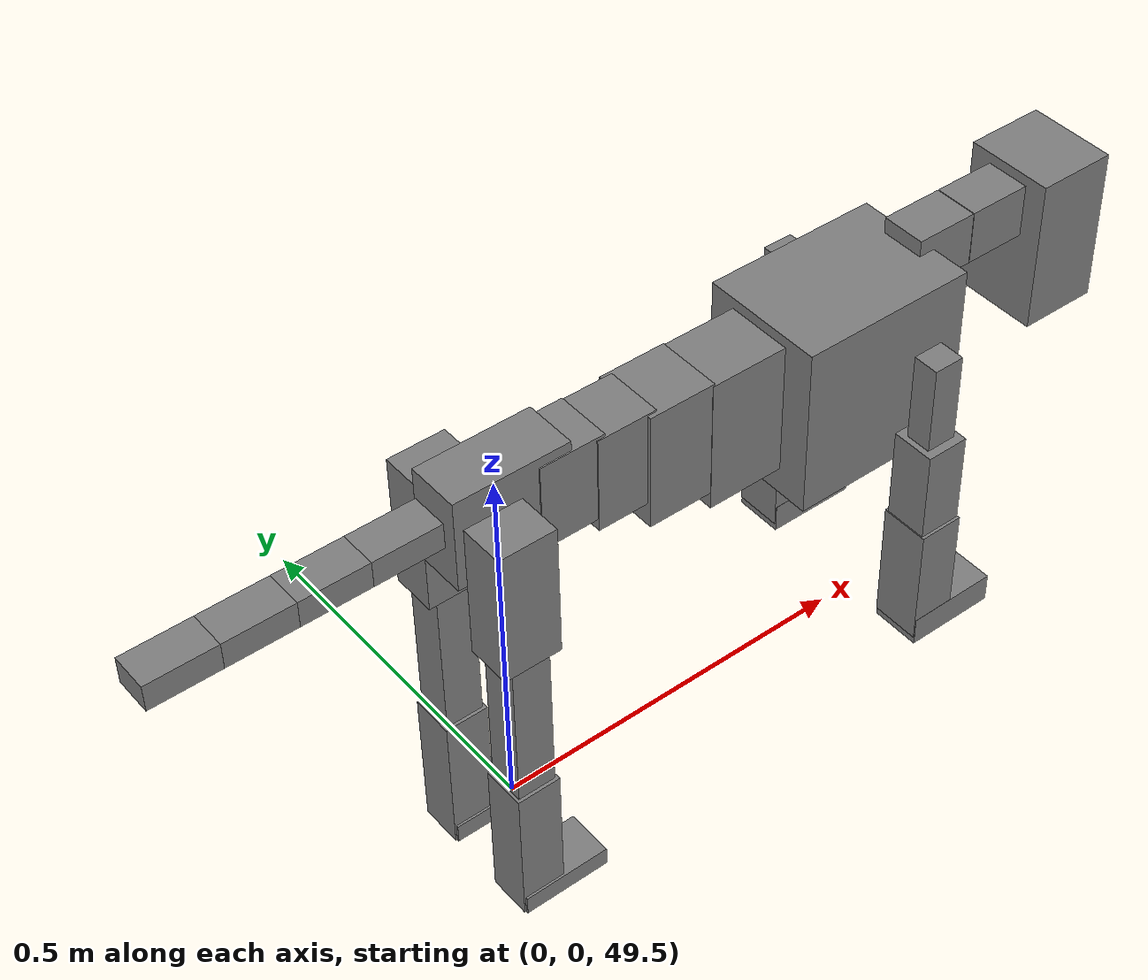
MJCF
<mujoco model="dog">

    <default>
        <joint armature="0.02" stiffness="1" damping="0.2" limited="true"/>
        <geom condim="3" friction="1 0.05 0.05" margin="0.01"/>
        <motor ctrllimited="true" ctrlrange="-1.0 1.0" forcelimited="true" gear="50"/>
    </default>

    <compiler inertiafromgeom="true" angle="radian"/>

    <option timestep="0.016" iterations="50" tolerance="1e-10" solver="Newton" jacobian="dense" cone="pyramidal"/>

    <size nconmax="20000" njmax="60000" nstack="5000000"/>
    <visual>
        <map force="0.1" zfar="30"/>
        <rgba haze="0.15 0.25 0.35 1"/>
        <quality shadowsize="2048"/>
        <global offwidth="800" offheight="800"/>
    </visual>

    <asset>
        <texture type="skybox" builtin="gradient" rgb1="0.3 0.5 0.7" rgb2="0 0 0" width="512" height="512"/>
        <texture name="texplane" type="2d" builtin="checker" rgb1=".2 .3 .4" rgb2=".1 0.15 0.2" width="512" height="512"
                 mark="cross" markrgb=".8 .8 .8"/>
        <texture name="texgeom" type="cube" builtin="flat" mark="cross" width="127" height="1278" rgb1="0.8 0.6 0.4"
                 rgb2="0.8 0.6 0.4" markrgb="1 1 1" random="0.01"/>

        <material name="matplane" reflectance="0.3" texture="texplane" texrepeat="1 1" texuniform="true"/>
        <material name="matgeom" texture="texgeom" texuniform="true" rgba="0.8 0.6 .4 1"/>
    </asset>

    <worldbody>
        <geom name="floor" pos="0 0 0" size="0 0 .25" type="plane" material="matplane" condim="3"/>

        <light directional="false" diffuse=".2 .2 .2" specular="0 0 0" pos="0 0 5" dir="0 0 -1" castshadow="false"/>
        <light mode="targetbodycom" target="torso" directional="false" diffuse=".8 .8 .8" specular="0.3 0.3 0.3"
               pos="0 0 4.0" dir="0 0 -1"/>

        <body name="root" pos="0 0 50">
            <freejoint name="root_1"/>
            <geom type="box" pos="0 0 -0.02" size="0.0774  0.0358  0.063" density="2030"/>

            <body name="spine1" pos="0.054 0 0">
                <joint name="spine1_y" axis="0 1 0" range="0 0.7" limited="true"/>
                <geom type="box" pos="0.02375 0 -0.03" size="0.04375  0.0375  0.05985" density="2030"/>

                <body name="spine2" pos="0.0612 0 0">
                    <joint name="spine2_y" axis="0 1 0" range="-0.15 0.15" limited="true"/>
                    <geom type="box" pos="0.03555  0  -0.04" size="0.04055  0.039  0.06615" density="2030"/>

                    <body name="spine3" pos="0.0730 0 0">
                        <joint name="spine3_y" axis="0 1 0" range="-0.15 0.15" limited="true"/>
                        <geom type="box" pos="0.03555  0  -0.057" size="0.04555  0.0445  0.081" density="2030"/>

                        <body name="spine4" pos="0.0780 0 0">
                            <joint name="spine4_y" axis="0 1 0" range="-0.15 0.15" limited="true"/>
                            <geom type="box" pos="0.05265  0  -0.07" size="0.05265  0.045  0.09135" density="2030"/>

                            <body name="torso" pos="0.1082 0 0">
                                <joint name="torso_y" axis="0 1 0" range="-0.15 0.15" limited="true"/>
                                <geom type="box" pos="0.11925  0  -0.085" size="0.11925  0.085  0.11745"
                                      density="2030"/>

                                <body name="neck1" pos="0.2160  0   0.0180">
                                    <joint name="neck1_y" axis="0 1 0" range="-1.2  -1" limited="true"/>
                                    <geom type="box" pos="0.0423  0  0" size="0.0423  0.03  0.036" density="2325"/>

                                    <body name="neck2" pos="0.0853  0  0">
                                        <joint name="neck2_y" axis="0 1 0" range="0.1  0" limited="true"/>
                                        <geom type="box" pos="0.0423  0  0" size="0.0423  0.03  0.036" density="2325"/>

                                        <body name="head" pos="0.0853  0  0">
                                            <joint name="head_y" axis="0 1 0" range="-0.3  -0.2" limited="true"/>
                                            <geom type="box" pos="0.0531  0  -0.055" size="0.0531  0.06  0.1044"
                                                  density="4030"/>

                                        </body>
                                    </body>
                                </body>

                                <body name="front_shoulder" pos="0.156  0   -0.0480">
                                    <joint name="front_shoulder_y" axis="0 1 0" range="-1 1.5" limited="true"/>
                                    <geom type="box" pos="0 0.13 -0.0467" size="0.0206  0.0176  0.0734" density="1158"/>
                                    <geom type="box" pos="0 -0.13 -0.0467" size="0.0206  0.0176  0.0734"
                                          density="1158"/>

                                    <body name="front_elbow" pos="0  0  -0.0935">
                                        <joint name="front_elbow_y" axis="0 1 0" range="-2 0" limited="true"/>
                                        <geom type="box" pos="0 0.13 -0.0693" size="0.0287  0.0293  0.0693"
                                              density="1081"/>
                                        <geom type="box" pos="0 -0.13 -0.0693" size="0.0287  0.0293  0.0693"
                                              density="1081"/>

                                        <body name="front_wrist" pos="0  0  -0.1386">
                                            <joint name="front_wrist_y" axis="0 1 0" range="-0.2 0" limited="true"/>
                                            <geom type="box" pos="0 0.13 -0.0716" size="0.0298  0.0332  0.0847"
                                                  density="1664"/>
                                            <geom type="box" pos="0 -0.13 -0.0716" size="0.0298  0.0332  0.0847"
                                                  density="1664"/>

                                            <body name="front_finger_end" pos="0  0  -0.1432">
                                                <joint name="front_finger_y" axis="0 1 0" range="-0.4 1"
                                                       limited="true"/>
                                                <geom type="box" pos="0.0336  0.13  -0.0048"
                                                      size="0.0616  0.0336  0.0198" density="1515"/>
                                                <geom type="box" pos="0.0336  -0.13  -0.0048"
                                                      size="0.0616  0.0336  0.0198" density="1515"/>

                                            </body>

                                        </body>
                                    </body>
                                </body>

                            </body>
                        </body>
                    </body>
                </body>
            </body>

            <body name="back_hip" pos="-0.03 0 -0.018">
                <joint name="back_hip_y" axis="0 1 0" range="-1.5 0.3" limited="true"/>
                <geom type="box" pos="0 0.07 -0.0687" size="0.0384  0.0301  0.0915" density="1154"/>
                <geom type="box" pos="0 -0.07 -0.0687" size="0.0384  0.0301  0.0915" density="1154"/>

                <body name="back_knee" pos="0  0  -0.1373">
                    <joint name="back_knee_y" axis="0 1 0" range="0 2.8" limited="true"/>
                    <geom type="box" pos="0 0.07 -0.1221" size="0.0256  0.0252  0.1377" density="1227"/>
                    <geom type="box" pos="0 -0.07 -0.1221" size="0.0256  0.0252  0.1377" density="1227"/>

                    <body name="back_ankle" pos="0  0  -0.2443">
                        <joint name="back_ankle_y" axis="0 1 0" range="-2.2 0" limited="true"/>
                        <geom type="box" pos="0 0.07 -0.0900" size="0.0296  0.0296  0.1012" density="1284"/>
                        <geom type="box" pos="0 -0.07 -0.0900" size="0.0296  0.0296  0.1012" density="1284"/>

                        <body name="back_toe_end" pos="0  0  -0.1800">
                            <joint name="back_toe_y" axis="0 1 0" range="-0.4 1" limited="true"/>
                            <geom type="box" pos="0.0327  0.07  0.0018" size="0.0599  0.0327  0.0132" density="1515"/>
                            <geom type="box" pos="0.0327  -0.07  0.0018" size="0.0599  0.0327  0.0132" density="1515"/>

                        </body>
                    </body>
                </body>
            </body>

            <body name="tail1" pos="-0.074 0 -0.006">
                <joint name="tail1_y" axis="0 1 0" range="-0.2 0.2" limited="true"/>
                <geom type="box" pos="-0.0536  0  0" size="0.045  0.025  0.0175" density="1587"/>

                <body name="tail2" pos="-0.09 0 0">
                    <joint name="tail2_y" axis="0 1 0" range="-0.2 0.2" limited="true"/>
                    <geom type="box" pos="-0.0536  0  0" size="0.045  0.025  0.0175" density="1587"/>

                    <body name="tail3" pos="-0.09 0 0">
                        <joint name="tail3_y" axis="0 1 0" range="-0.2 0.2" limited="true"/>
                        <geom type="box" pos="-0.0536  0  0" size="0.045  0.025  0.0175" density="1587"/>

                        <body name="tail4" pos="-0.09 0 0">
                            <joint name="tail4_y" axis="0 1 0" range="-0.2 0.2" limited="true"/>
                            <geom type="box" pos="-0.0536  0  0" size="0.045  0.025  0.0175" density="1587"/>

                        </body>
                    </body>
                </body>
            </body>
        </body>
    </worldbody>

    <actuator>
        <motor joint="spine1_y" forcerange="-150 150     "/>
        <motor joint="spine2_y" forcerange="-150 150     "/>
        <motor joint="spine3_y" forcerange="-150 150     "/>
        <motor joint="spine4_y" forcerange="-150 150     "/>
        <motor joint="torso_y" forcerange="-150 150     "/>
        <motor joint="neck1_y" forcerange="-100 100       "/>
        <motor joint="neck2_y" forcerange="-100 100       "/>
        <motor joint="head_y" forcerange="-150 150       "/>
        <motor joint="front_shoulder_y" forcerange="-105.81 111.65"/>
        <motor joint="front_elbow_y" forcerange="-190.22 122.81"/>
        <motor joint="front_wrist_y" forcerange="-138.52 126.78"/>
        <motor joint="front_finger_y" forcerange="-67.17 72.04"/>
        <motor joint="back_hip_y" forcerange="-288.02 313.90"/>
        <motor joint="back_knee_y" forcerange="-325.25 241.40"/>
        <motor joint="back_angle_y" forcerange="-147.82 225.78"/>
        <motor joint="back_toe_y" forcerange="-66.94 114.36"/>
        <motor joint="tail1_y" forcerange="-50 50     "/>
        <motor joint="tail2_y" forcerange="-50 50     "/>
        <motor joint="tail3_y" forcerange="-50 50     "/>
        <motor joint="tail4_y" forcerange="-50 50     "/>
    </actuator>
</mujoco>
